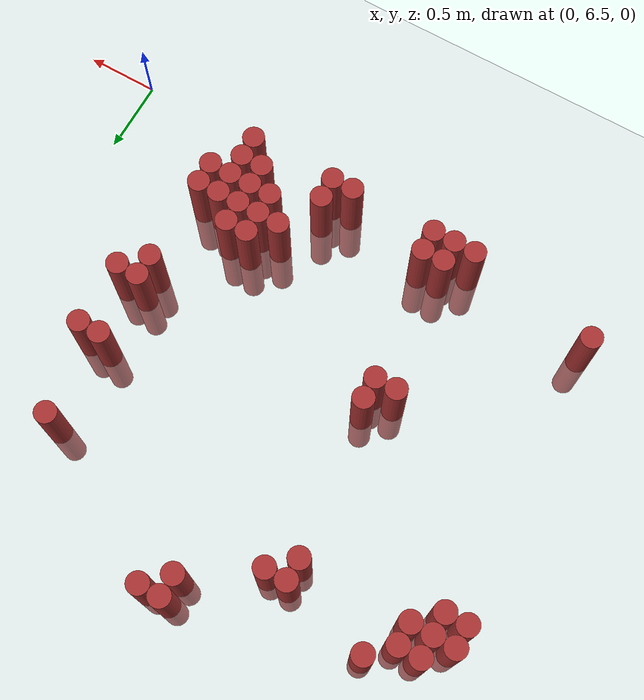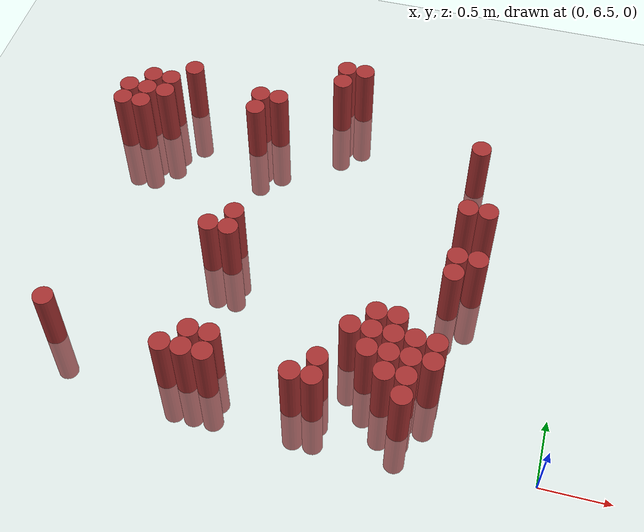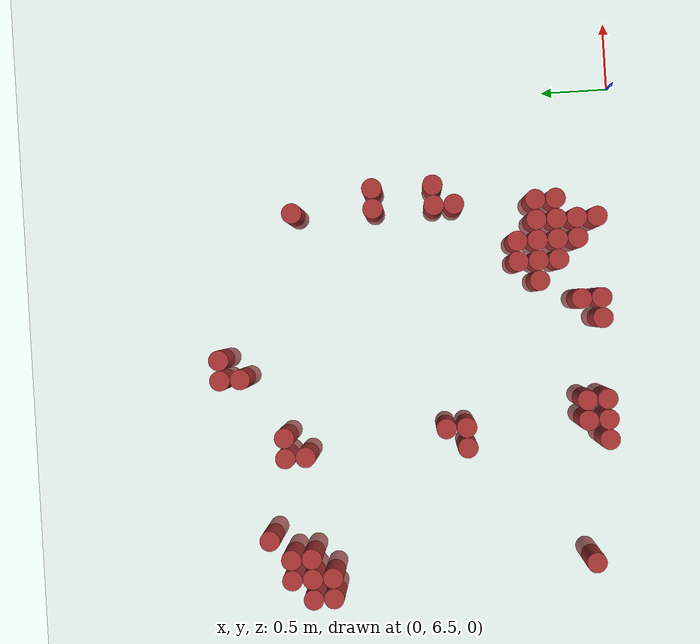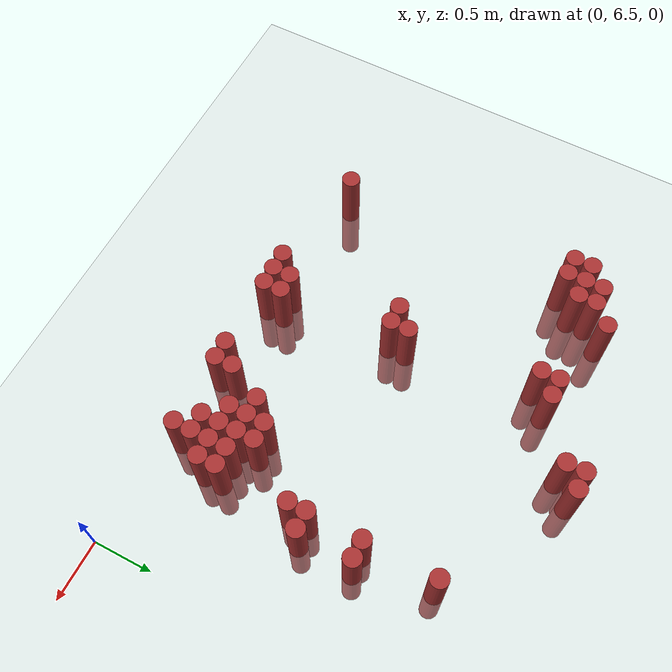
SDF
<sdf version="1.6">
 <world name="default">
  <model name="ground_plane">
   <static>1</static>
   <link name="link">
    <collision name="collision">
     <geometry><plane><normal>0 0 1</normal><size>100 100</size></plane></geometry>
     <surface><friction><ode><mu>100</mu><mu2>50</mu2></ode></friction></surface>
    </collision>
    <visual name="visual">
     <cast_shadows>0</cast_shadows>
     <geometry><plane><normal>0 0 1</normal><size>100 100</size></plane></geometry>
     <material>
      <script><uri>file://media/materials/scripts/gazebo.material</uri><name>Gazebo/Grey</name></script>
     </material>
    </visual>
   </link>
  </model>
  <model name="unit_cylinder_164">
   <static>1</static>
   <pose>-3.675000 8.775000 0.000000 0.000000 0.000000 0.000000</pose>
   <link name="link">
    <inertial>
     <mass>1</mass>
     <inertia><ixx>0.145833</ixx><ixy>0</ixy><ixz>0</ixz><iyy>0.145833</iyy><iyz>0</iyz><izz>0.125</izz></inertia>
    </inertial>
    <collision name="collision">
     <geometry><cylinder><radius>0.075000</radius><length>1</length></cylinder></geometry>
    </collision>
    <visual name="visual">
     <geometry><cylinder><radius>0.075000</radius><length>1</length></cylinder></geometry>
     <material>
      <ambient>0.648000 0.192000 0.192000 1</ambient>
      <diffuse>0.648000 0.192000 0.192000 1</diffuse>
     </material>
     <material>
      <script><name>Gazebo/Grey</name><uri>file://media/materials/scripts/gazebo.material</uri></script>
     </material>
    </visual>
   </link>
  </model>
  <model name="unit_cylinder_165">
   <static>1</static>
   <pose>-3.675000 8.925000 0.000000 0.000000 0.000000 0.000000</pose>
   <link name="link">
    <inertial>
     <mass>1</mass>
     <inertia><ixx>0.145833</ixx><ixy>0</ixy><ixz>0</ixz><iyy>0.145833</iyy><iyz>0</iyz><izz>0.125</izz></inertia>
    </inertial>
    <collision name="collision">
     <geometry><cylinder><radius>0.075000</radius><length>1</length></cylinder></geometry>
    </collision>
    <visual name="visual">
     <geometry><cylinder><radius>0.075000</radius><length>1</length></cylinder></geometry>
     <material>
      <ambient>0.648000 0.192000 0.192000 1</ambient>
      <diffuse>0.648000 0.192000 0.192000 1</diffuse>
     </material>
     <material>
      <script><name>Gazebo/Grey</name><uri>file://media/materials/scripts/gazebo.material</uri></script>
     </material>
    </visual>
   </link>
  </model>
  <model name="unit_cylinder_166">
   <static>1</static>
   <pose>-3.525000 6.825000 0.000000 0.000000 0.000000 0.000000</pose>
   <link name="link">
    <inertial>
     <mass>1</mass>
     <inertia><ixx>0.145833</ixx><ixy>0</ixy><ixz>0</ixz><iyy>0.145833</iyy><iyz>0</iyz><izz>0.125</izz></inertia>
    </inertial>
    <collision name="collision">
     <geometry><cylinder><radius>0.075000</radius><length>1</length></cylinder></geometry>
    </collision>
    <visual name="visual">
     <geometry><cylinder><radius>0.075000</radius><length>1</length></cylinder></geometry>
     <material>
      <ambient>0.648000 0.192000 0.192000 1</ambient>
      <diffuse>0.648000 0.192000 0.192000 1</diffuse>
     </material>
     <material>
      <script><name>Gazebo/Grey</name><uri>file://media/materials/scripts/gazebo.material</uri></script>
     </material>
    </visual>
   </link>
  </model>
  <model name="unit_cylinder_167">
   <static>1</static>
   <pose>-3.525000 8.775000 0.000000 0.000000 0.000000 0.000000</pose>
   <link name="link">
    <inertial>
     <mass>1</mass>
     <inertia><ixx>0.145833</ixx><ixy>0</ixy><ixz>0</ixz><iyy>0.145833</iyy><iyz>0</iyz><izz>0.125</izz></inertia>
    </inertial>
    <collision name="collision">
     <geometry><cylinder><radius>0.075000</radius><length>1</length></cylinder></geometry>
    </collision>
    <visual name="visual">
     <geometry><cylinder><radius>0.075000</radius><length>1</length></cylinder></geometry>
     <material>
      <ambient>0.648000 0.192000 0.192000 1</ambient>
      <diffuse>0.648000 0.192000 0.192000 1</diffuse>
     </material>
     <material>
      <script><name>Gazebo/Grey</name><uri>file://media/materials/scripts/gazebo.material</uri></script>
     </material>
    </visual>
   </link>
  </model>
  <model name="unit_cylinder_168">
   <static>1</static>
   <pose>-3.525000 8.925000 0.000000 0.000000 0.000000 0.000000</pose>
   <link name="link">
    <inertial>
     <mass>1</mass>
     <inertia><ixx>0.145833</ixx><ixy>0</ixy><ixz>0</ixz><iyy>0.145833</iyy><iyz>0</iyz><izz>0.125</izz></inertia>
    </inertial>
    <collision name="collision">
     <geometry><cylinder><radius>0.075000</radius><length>1</length></cylinder></geometry>
    </collision>
    <visual name="visual">
     <geometry><cylinder><radius>0.075000</radius><length>1</length></cylinder></geometry>
     <material>
      <ambient>0.648000 0.192000 0.192000 1</ambient>
      <diffuse>0.648000 0.192000 0.192000 1</diffuse>
     </material>
     <material>
      <script><name>Gazebo/Grey</name><uri>file://media/materials/scripts/gazebo.material</uri></script>
     </material>
    </visual>
   </link>
  </model>
  <model name="unit_cylinder_169">
   <static>1</static>
   <pose>-3.525000 9.075000 0.000000 0.000000 0.000000 0.000000</pose>
   <link name="link">
    <inertial>
     <mass>1</mass>
     <inertia><ixx>0.145833</ixx><ixy>0</ixy><ixz>0</ixz><iyy>0.145833</iyy><iyz>0</iyz><izz>0.125</izz></inertia>
    </inertial>
    <collision name="collision">
     <geometry><cylinder><radius>0.075000</radius><length>1</length></cylinder></geometry>
    </collision>
    <visual name="visual">
     <geometry><cylinder><radius>0.075000</radius><length>1</length></cylinder></geometry>
     <material>
      <ambient>0.648000 0.192000 0.192000 1</ambient>
      <diffuse>0.648000 0.192000 0.192000 1</diffuse>
     </material>
     <material>
      <script><name>Gazebo/Grey</name><uri>file://media/materials/scripts/gazebo.material</uri></script>
     </material>
    </visual>
   </link>
  </model>
  <model name="unit_cylinder_170">
   <static>1</static>
   <pose>-3.375000 8.925000 0.000000 0.000000 0.000000 0.000000</pose>
   <link name="link">
    <inertial>
     <mass>1</mass>
     <inertia><ixx>0.145833</ixx><ixy>0</ixy><ixz>0</ixz><iyy>0.145833</iyy><iyz>0</iyz><izz>0.125</izz></inertia>
    </inertial>
    <collision name="collision">
     <geometry><cylinder><radius>0.075000</radius><length>1</length></cylinder></geometry>
    </collision>
    <visual name="visual">
     <geometry><cylinder><radius>0.075000</radius><length>1</length></cylinder></geometry>
     <material>
      <ambient>0.648000 0.192000 0.192000 1</ambient>
      <diffuse>0.648000 0.192000 0.192000 1</diffuse>
     </material>
     <material>
      <script><name>Gazebo/Grey</name><uri>file://media/materials/scripts/gazebo.material</uri></script>
     </material>
    </visual>
   </link>
  </model>
  <model name="unit_cylinder_171">
   <static>1</static>
   <pose>-3.375000 9.075000 0.000000 0.000000 0.000000 0.000000</pose>
   <link name="link">
    <inertial>
     <mass>1</mass>
     <inertia><ixx>0.145833</ixx><ixy>0</ixy><ixz>0</ixz><iyy>0.145833</iyy><iyz>0</iyz><izz>0.125</izz></inertia>
    </inertial>
    <collision name="collision">
     <geometry><cylinder><radius>0.075000</radius><length>1</length></cylinder></geometry>
    </collision>
    <visual name="visual">
     <geometry><cylinder><radius>0.075000</radius><length>1</length></cylinder></geometry>
     <material>
      <ambient>0.648000 0.192000 0.192000 1</ambient>
      <diffuse>0.648000 0.192000 0.192000 1</diffuse>
     </material>
     <material>
      <script><name>Gazebo/Grey</name><uri>file://media/materials/scripts/gazebo.material</uri></script>
     </material>
    </visual>
   </link>
  </model>
  <model name="unit_cylinder_172">
   <static>1</static>
   <pose>-3.225000 9.225000 0.000000 0.000000 0.000000 0.000000</pose>
   <link name="link">
    <inertial>
     <mass>1</mass>
     <inertia><ixx>0.145833</ixx><ixy>0</ixy><ixz>0</ixz><iyy>0.145833</iyy><iyz>0</iyz><izz>0.125</izz></inertia>
    </inertial>
    <collision name="collision">
     <geometry><cylinder><radius>0.075000</radius><length>1</length></cylinder></geometry>
    </collision>
    <visual name="visual">
     <geometry><cylinder><radius>0.075000</radius><length>1</length></cylinder></geometry>
     <material>
      <ambient>0.648000 0.192000 0.192000 1</ambient>
      <diffuse>0.648000 0.192000 0.192000 1</diffuse>
     </material>
     <material>
      <script><name>Gazebo/Grey</name><uri>file://media/materials/scripts/gazebo.material</uri></script>
     </material>
    </visual>
   </link>
  </model>
  <model name="unit_cylinder_173">
   <static>1</static>
   <pose>-2.625000 6.675000 0.000000 0.000000 0.000000 0.000000</pose>
   <link name="link">
    <inertial>
     <mass>1</mass>
     <inertia><ixx>0.145833</ixx><ixy>0</ixy><ixz>0</ixz><iyy>0.145833</iyy><iyz>0</iyz><izz>0.125</izz></inertia>
    </inertial>
    <collision name="collision">
     <geometry><cylinder><radius>0.075000</radius><length>1</length></cylinder></geometry>
    </collision>
    <visual name="visual">
     <geometry><cylinder><radius>0.075000</radius><length>1</length></cylinder></geometry>
     <material>
      <ambient>0.648000 0.192000 0.192000 1</ambient>
      <diffuse>0.648000 0.192000 0.192000 1</diffuse>
     </material>
     <material>
      <script><name>Gazebo/Grey</name><uri>file://media/materials/scripts/gazebo.material</uri></script>
     </material>
    </visual>
   </link>
  </model>
  <model name="unit_cylinder_174">
   <static>1</static>
   <pose>-2.625000 7.725000 0.000000 0.000000 0.000000 0.000000</pose>
   <link name="link">
    <inertial>
     <mass>1</mass>
     <inertia><ixx>0.145833</ixx><ixy>0</ixy><ixz>0</ixz><iyy>0.145833</iyy><iyz>0</iyz><izz>0.125</izz></inertia>
    </inertial>
    <collision name="collision">
     <geometry><cylinder><radius>0.075000</radius><length>1</length></cylinder></geometry>
    </collision>
    <visual name="visual">
     <geometry><cylinder><radius>0.075000</radius><length>1</length></cylinder></geometry>
     <material>
      <ambient>0.648000 0.192000 0.192000 1</ambient>
      <diffuse>0.648000 0.192000 0.192000 1</diffuse>
     </material>
     <material>
      <script><name>Gazebo/Grey</name><uri>file://media/materials/scripts/gazebo.material</uri></script>
     </material>
    </visual>
   </link>
  </model>
  <model name="unit_cylinder_175">
   <static>1</static>
   <pose>-2.625000 8.925000 0.000000 0.000000 0.000000 0.000000</pose>
   <link name="link">
    <inertial>
     <mass>1</mass>
     <inertia><ixx>0.145833</ixx><ixy>0</ixy><ixz>0</ixz><iyy>0.145833</iyy><iyz>0</iyz><izz>0.125</izz></inertia>
    </inertial>
    <collision name="collision">
     <geometry><cylinder><radius>0.075000</radius><length>1</length></cylinder></geometry>
    </collision>
    <visual name="visual">
     <geometry><cylinder><radius>0.075000</radius><length>1</length></cylinder></geometry>
     <material>
      <ambient>0.648000 0.192000 0.192000 1</ambient>
      <diffuse>0.648000 0.192000 0.192000 1</diffuse>
     </material>
     <material>
      <script><name>Gazebo/Grey</name><uri>file://media/materials/scripts/gazebo.material</uri></script>
     </material>
    </visual>
   </link>
  </model>
  <model name="unit_cylinder_176">
   <static>1</static>
   <pose>-2.625000 9.075000 0.000000 0.000000 0.000000 0.000000</pose>
   <link name="link">
    <inertial>
     <mass>1</mass>
     <inertia><ixx>0.145833</ixx><ixy>0</ixy><ixz>0</ixz><iyy>0.145833</iyy><iyz>0</iyz><izz>0.125</izz></inertia>
    </inertial>
    <collision name="collision">
     <geometry><cylinder><radius>0.075000</radius><length>1</length></cylinder></geometry>
    </collision>
    <visual name="visual">
     <geometry><cylinder><radius>0.075000</radius><length>1</length></cylinder></geometry>
     <material>
      <ambient>0.648000 0.192000 0.192000 1</ambient>
      <diffuse>0.648000 0.192000 0.192000 1</diffuse>
     </material>
     <material>
      <script><name>Gazebo/Grey</name><uri>file://media/materials/scripts/gazebo.material</uri></script>
     </material>
    </visual>
   </link>
  </model>
  <model name="unit_cylinder_177">
   <static>1</static>
   <pose>-2.475000 6.675000 0.000000 0.000000 0.000000 0.000000</pose>
   <link name="link">
    <inertial>
     <mass>1</mass>
     <inertia><ixx>0.145833</ixx><ixy>0</ixy><ixz>0</ixz><iyy>0.145833</iyy><iyz>0</iyz><izz>0.125</izz></inertia>
    </inertial>
    <collision name="collision">
     <geometry><cylinder><radius>0.075000</radius><length>1</length></cylinder></geometry>
    </collision>
    <visual name="visual">
     <geometry><cylinder><radius>0.075000</radius><length>1</length></cylinder></geometry>
     <material>
      <ambient>0.648000 0.192000 0.192000 1</ambient>
      <diffuse>0.648000 0.192000 0.192000 1</diffuse>
     </material>
     <material>
      <script><name>Gazebo/Grey</name><uri>file://media/materials/scripts/gazebo.material</uri></script>
     </material>
    </visual>
   </link>
  </model>
  <model name="unit_cylinder_178">
   <static>1</static>
   <pose>-2.475000 6.825000 0.000000 0.000000 0.000000 0.000000</pose>
   <link name="link">
    <inertial>
     <mass>1</mass>
     <inertia><ixx>0.145833</ixx><ixy>0</ixy><ixz>0</ixz><iyy>0.145833</iyy><iyz>0</iyz><izz>0.125</izz></inertia>
    </inertial>
    <collision name="collision">
     <geometry><cylinder><radius>0.075000</radius><length>1</length></cylinder></geometry>
    </collision>
    <visual name="visual">
     <geometry><cylinder><radius>0.075000</radius><length>1</length></cylinder></geometry>
     <material>
      <ambient>0.648000 0.192000 0.192000 1</ambient>
      <diffuse>0.648000 0.192000 0.192000 1</diffuse>
     </material>
     <material>
      <script><name>Gazebo/Grey</name><uri>file://media/materials/scripts/gazebo.material</uri></script>
     </material>
    </visual>
   </link>
  </model>
  <model name="unit_cylinder_179">
   <static>1</static>
   <pose>-2.475000 7.725000 0.000000 0.000000 0.000000 0.000000</pose>
   <link name="link">
    <inertial>
     <mass>1</mass>
     <inertia><ixx>0.145833</ixx><ixy>0</ixy><ixz>0</ixz><iyy>0.145833</iyy><iyz>0</iyz><izz>0.125</izz></inertia>
    </inertial>
    <collision name="collision">
     <geometry><cylinder><radius>0.075000</radius><length>1</length></cylinder></geometry>
    </collision>
    <visual name="visual">
     <geometry><cylinder><radius>0.075000</radius><length>1</length></cylinder></geometry>
     <material>
      <ambient>0.648000 0.192000 0.192000 1</ambient>
      <diffuse>0.648000 0.192000 0.192000 1</diffuse>
     </material>
     <material>
      <script><name>Gazebo/Grey</name><uri>file://media/materials/scripts/gazebo.material</uri></script>
     </material>
    </visual>
   </link>
  </model>
  <model name="unit_cylinder_180">
   <static>1</static>
   <pose>-2.475000 7.875000 0.000000 0.000000 0.000000 0.000000</pose>
   <link name="link">
    <inertial>
     <mass>1</mass>
     <inertia><ixx>0.145833</ixx><ixy>0</ixy><ixz>0</ixz><iyy>0.145833</iyy><iyz>0</iyz><izz>0.125</izz></inertia>
    </inertial>
    <collision name="collision">
     <geometry><cylinder><radius>0.075000</radius><length>1</length></cylinder></geometry>
    </collision>
    <visual name="visual">
     <geometry><cylinder><radius>0.075000</radius><length>1</length></cylinder></geometry>
     <material>
      <ambient>0.648000 0.192000 0.192000 1</ambient>
      <diffuse>0.648000 0.192000 0.192000 1</diffuse>
     </material>
     <material>
      <script><name>Gazebo/Grey</name><uri>file://media/materials/scripts/gazebo.material</uri></script>
     </material>
    </visual>
   </link>
  </model>
  <model name="unit_cylinder_181">
   <static>1</static>
   <pose>-2.475000 9.075000 0.000000 0.000000 0.000000 0.000000</pose>
   <link name="link">
    <inertial>
     <mass>1</mass>
     <inertia><ixx>0.145833</ixx><ixy>0</ixy><ixz>0</ixz><iyy>0.145833</iyy><iyz>0</iyz><izz>0.125</izz></inertia>
    </inertial>
    <collision name="collision">
     <geometry><cylinder><radius>0.075000</radius><length>1</length></cylinder></geometry>
    </collision>
    <visual name="visual">
     <geometry><cylinder><radius>0.075000</radius><length>1</length></cylinder></geometry>
     <material>
      <ambient>0.648000 0.192000 0.192000 1</ambient>
      <diffuse>0.648000 0.192000 0.192000 1</diffuse>
     </material>
     <material>
      <script><name>Gazebo/Grey</name><uri>file://media/materials/scripts/gazebo.material</uri></script>
     </material>
    </visual>
   </link>
  </model>
  <model name="unit_cylinder_182">
   <static>1</static>
   <pose>-2.325000 6.675000 0.000000 0.000000 0.000000 0.000000</pose>
   <link name="link">
    <inertial>
     <mass>1</mass>
     <inertia><ixx>0.145833</ixx><ixy>0</ixy><ixz>0</ixz><iyy>0.145833</iyy><iyz>0</iyz><izz>0.125</izz></inertia>
    </inertial>
    <collision name="collision">
     <geometry><cylinder><radius>0.075000</radius><length>1</length></cylinder></geometry>
    </collision>
    <visual name="visual">
     <geometry><cylinder><radius>0.075000</radius><length>1</length></cylinder></geometry>
     <material>
      <ambient>0.648000 0.192000 0.192000 1</ambient>
      <diffuse>0.648000 0.192000 0.192000 1</diffuse>
     </material>
     <material>
      <script><name>Gazebo/Grey</name><uri>file://media/materials/scripts/gazebo.material</uri></script>
     </material>
    </visual>
   </link>
  </model>
  <model name="unit_cylinder_183">
   <static>1</static>
   <pose>-2.325000 6.825000 0.000000 0.000000 0.000000 0.000000</pose>
   <link name="link">
    <inertial>
     <mass>1</mass>
     <inertia><ixx>0.145833</ixx><ixy>0</ixy><ixz>0</ixz><iyy>0.145833</iyy><iyz>0</iyz><izz>0.125</izz></inertia>
    </inertial>
    <collision name="collision">
     <geometry><cylinder><radius>0.075000</radius><length>1</length></cylinder></geometry>
    </collision>
    <visual name="visual">
     <geometry><cylinder><radius>0.075000</radius><length>1</length></cylinder></geometry>
     <material>
      <ambient>0.648000 0.192000 0.192000 1</ambient>
      <diffuse>0.648000 0.192000 0.192000 1</diffuse>
     </material>
     <material>
      <script><name>Gazebo/Grey</name><uri>file://media/materials/scripts/gazebo.material</uri></script>
     </material>
    </visual>
   </link>
  </model>
  <model name="unit_cylinder_184">
   <static>1</static>
   <pose>-2.025000 9.375000 0.000000 0.000000 0.000000 0.000000</pose>
   <link name="link">
    <inertial>
     <mass>1</mass>
     <inertia><ixx>0.145833</ixx><ixy>0</ixy><ixz>0</ixz><iyy>0.145833</iyy><iyz>0</iyz><izz>0.125</izz></inertia>
    </inertial>
    <collision name="collision">
     <geometry><cylinder><radius>0.075000</radius><length>1</length></cylinder></geometry>
    </collision>
    <visual name="visual">
     <geometry><cylinder><radius>0.075000</radius><length>1</length></cylinder></geometry>
     <material>
      <ambient>0.648000 0.192000 0.192000 1</ambient>
      <diffuse>0.648000 0.192000 0.192000 1</diffuse>
     </material>
     <material>
      <script><name>Gazebo/Grey</name><uri>file://media/materials/scripts/gazebo.material</uri></script>
     </material>
    </visual>
   </link>
  </model>
  <model name="unit_cylinder_185">
   <static>1</static>
   <pose>-2.025000 9.525000 0.000000 0.000000 0.000000 0.000000</pose>
   <link name="link">
    <inertial>
     <mass>1</mass>
     <inertia><ixx>0.145833</ixx><ixy>0</ixy><ixz>0</ixz><iyy>0.145833</iyy><iyz>0</iyz><izz>0.125</izz></inertia>
    </inertial>
    <collision name="collision">
     <geometry><cylinder><radius>0.075000</radius><length>1</length></cylinder></geometry>
    </collision>
    <visual name="visual">
     <geometry><cylinder><radius>0.075000</radius><length>1</length></cylinder></geometry>
     <material>
      <ambient>0.648000 0.192000 0.192000 1</ambient>
      <diffuse>0.648000 0.192000 0.192000 1</diffuse>
     </material>
     <material>
      <script><name>Gazebo/Grey</name><uri>file://media/materials/scripts/gazebo.material</uri></script>
     </material>
    </visual>
   </link>
  </model>
  <model name="unit_cylinder_186">
   <static>1</static>
   <pose>-1.875000 9.525000 0.000000 0.000000 0.000000 0.000000</pose>
   <link name="link">
    <inertial>
     <mass>1</mass>
     <inertia><ixx>0.145833</ixx><ixy>0</ixy><ixz>0</ixz><iyy>0.145833</iyy><iyz>0</iyz><izz>0.125</izz></inertia>
    </inertial>
    <collision name="collision">
     <geometry><cylinder><radius>0.075000</radius><length>1</length></cylinder></geometry>
    </collision>
    <visual name="visual">
     <geometry><cylinder><radius>0.075000</radius><length>1</length></cylinder></geometry>
     <material>
      <ambient>0.648000 0.192000 0.192000 1</ambient>
      <diffuse>0.648000 0.192000 0.192000 1</diffuse>
     </material>
     <material>
      <script><name>Gazebo/Grey</name><uri>file://media/materials/scripts/gazebo.material</uri></script>
     </material>
    </visual>
   </link>
  </model>
  <model name="unit_cylinder_189">
   <static>1</static>
   <pose>-1.725000 6.675000 0.000000 0.000000 0.000000 0.000000</pose>
   <link name="link">
    <inertial>
     <mass>1</mass>
     <inertia><ixx>0.145833</ixx><ixy>0</ixy><ixz>0</ixz><iyy>0.145833</iyy><iyz>0</iyz><izz>0.125</izz></inertia>
    </inertial>
    <collision name="collision">
     <geometry><cylinder><radius>0.075000</radius><length>1</length></cylinder></geometry>
    </collision>
    <visual name="visual">
     <geometry><cylinder><radius>0.075000</radius><length>1</length></cylinder></geometry>
     <material>
      <ambient>0.648000 0.192000 0.192000 1</ambient>
      <diffuse>0.648000 0.192000 0.192000 1</diffuse>
     </material>
     <material>
      <script><name>Gazebo/Grey</name><uri>file://media/materials/scripts/gazebo.material</uri></script>
     </material>
    </visual>
   </link>
  </model>
  <model name="unit_cylinder_195">
   <static>1</static>
   <pose>-1.575000 6.675000 0.000000 0.000000 0.000000 0.000000</pose>
   <link name="link">
    <inertial>
     <mass>1</mass>
     <inertia><ixx>0.145833</ixx><ixy>0</ixy><ixz>0</ixz><iyy>0.145833</iyy><iyz>0</iyz><izz>0.125</izz></inertia>
    </inertial>
    <collision name="collision">
     <geometry><cylinder><radius>0.075000</radius><length>1</length></cylinder></geometry>
    </collision>
    <visual name="visual">
     <geometry><cylinder><radius>0.075000</radius><length>1</length></cylinder></geometry>
     <material>
      <ambient>0.648000 0.192000 0.192000 1</ambient>
      <diffuse>0.648000 0.192000 0.192000 1</diffuse>
     </material>
     <material>
      <script><name>Gazebo/Grey</name><uri>file://media/materials/scripts/gazebo.material</uri></script>
     </material>
    </visual>
   </link>
  </model>
  <model name="unit_cylinder_196">
   <static>1</static>
   <pose>-1.575000 6.825000 0.000000 0.000000 0.000000 0.000000</pose>
   <link name="link">
    <inertial>
     <mass>1</mass>
     <inertia><ixx>0.145833</ixx><ixy>0</ixy><ixz>0</ixz><iyy>0.145833</iyy><iyz>0</iyz><izz>0.125</izz></inertia>
    </inertial>
    <collision name="collision">
     <geometry><cylinder><radius>0.075000</radius><length>1</length></cylinder></geometry>
    </collision>
    <visual name="visual">
     <geometry><cylinder><radius>0.075000</radius><length>1</length></cylinder></geometry>
     <material>
      <ambient>0.648000 0.192000 0.192000 1</ambient>
      <diffuse>0.648000 0.192000 0.192000 1</diffuse>
     </material>
     <material>
      <script><name>Gazebo/Grey</name><uri>file://media/materials/scripts/gazebo.material</uri></script>
     </material>
    </visual>
   </link>
  </model>
  <model name="unit_cylinder_199">
   <static>1</static>
   <pose>-1.425000 7.125000 0.000000 0.000000 0.000000 0.000000</pose>
   <link name="link">
    <inertial>
     <mass>1</mass>
     <inertia><ixx>0.145833</ixx><ixy>0</ixy><ixz>0</ixz><iyy>0.145833</iyy><iyz>0</iyz><izz>0.125</izz></inertia>
    </inertial>
    <collision name="collision">
     <geometry><cylinder><radius>0.075000</radius><length>1</length></cylinder></geometry>
    </collision>
    <visual name="visual">
     <geometry><cylinder><radius>0.075000</radius><length>1</length></cylinder></geometry>
     <material>
      <ambient>0.648000 0.192000 0.192000 1</ambient>
      <diffuse>0.648000 0.192000 0.192000 1</diffuse>
     </material>
     <material>
      <script><name>Gazebo/Grey</name><uri>file://media/materials/scripts/gazebo.material</uri></script>
     </material>
    </visual>
   </link>
  </model>
  <model name="unit_cylinder_200">
   <static>1</static>
   <pose>-1.275000 6.975000 0.000000 0.000000 0.000000 0.000000</pose>
   <link name="link">
    <inertial>
     <mass>1</mass>
     <inertia><ixx>0.145833</ixx><ixy>0</ixy><ixz>0</ixz><iyy>0.145833</iyy><iyz>0</iyz><izz>0.125</izz></inertia>
    </inertial>
    <collision name="collision">
     <geometry><cylinder><radius>0.075000</radius><length>1</length></cylinder></geometry>
    </collision>
    <visual name="visual">
     <geometry><cylinder><radius>0.075000</radius><length>1</length></cylinder></geometry>
     <material>
      <ambient>0.648000 0.192000 0.192000 1</ambient>
      <diffuse>0.648000 0.192000 0.192000 1</diffuse>
     </material>
     <material>
      <script><name>Gazebo/Grey</name><uri>file://media/materials/scripts/gazebo.material</uri></script>
     </material>
    </visual>
   </link>
  </model>
  <model name="unit_cylinder_201">
   <static>1</static>
   <pose>-1.275000 7.125000 0.000000 0.000000 0.000000 0.000000</pose>
   <link name="link">
    <inertial>
     <mass>1</mass>
     <inertia><ixx>0.145833</ixx><ixy>0</ixy><ixz>0</ixz><iyy>0.145833</iyy><iyz>0</iyz><izz>0.125</izz></inertia>
    </inertial>
    <collision name="collision">
     <geometry><cylinder><radius>0.075000</radius><length>1</length></cylinder></geometry>
    </collision>
    <visual name="visual">
     <geometry><cylinder><radius>0.075000</radius><length>1</length></cylinder></geometry>
     <material>
      <ambient>0.648000 0.192000 0.192000 1</ambient>
      <diffuse>0.648000 0.192000 0.192000 1</diffuse>
     </material>
     <material>
      <script><name>Gazebo/Grey</name><uri>file://media/materials/scripts/gazebo.material</uri></script>
     </material>
    </visual>
   </link>
  </model>
  <model name="unit_cylinder_202">
   <static>1</static>
   <pose>-1.275000 7.275000 0.000000 0.000000 0.000000 0.000000</pose>
   <link name="link">
    <inertial>
     <mass>1</mass>
     <inertia><ixx>0.145833</ixx><ixy>0</ixy><ixz>0</ixz><iyy>0.145833</iyy><iyz>0</iyz><izz>0.125</izz></inertia>
    </inertial>
    <collision name="collision">
     <geometry><cylinder><radius>0.075000</radius><length>1</length></cylinder></geometry>
    </collision>
    <visual name="visual">
     <geometry><cylinder><radius>0.075000</radius><length>1</length></cylinder></geometry>
     <material>
      <ambient>0.648000 0.192000 0.192000 1</ambient>
      <diffuse>0.648000 0.192000 0.192000 1</diffuse>
     </material>
     <material>
      <script><name>Gazebo/Grey</name><uri>file://media/materials/scripts/gazebo.material</uri></script>
     </material>
    </visual>
   </link>
  </model>
  <model name="unit_cylinder_203">
   <static>1</static>
   <pose>-1.125000 6.825000 0.000000 0.000000 0.000000 0.000000</pose>
   <link name="link">
    <inertial>
     <mass>1</mass>
     <inertia><ixx>0.145833</ixx><ixy>0</ixy><ixz>0</ixz><iyy>0.145833</iyy><iyz>0</iyz><izz>0.125</izz></inertia>
    </inertial>
    <collision name="collision">
     <geometry><cylinder><radius>0.075000</radius><length>1</length></cylinder></geometry>
    </collision>
    <visual name="visual">
     <geometry><cylinder><radius>0.075000</radius><length>1</length></cylinder></geometry>
     <material>
      <ambient>0.648000 0.192000 0.192000 1</ambient>
      <diffuse>0.648000 0.192000 0.192000 1</diffuse>
     </material>
     <material>
      <script><name>Gazebo/Grey</name><uri>file://media/materials/scripts/gazebo.material</uri></script>
     </material>
    </visual>
   </link>
  </model>
  <model name="unit_cylinder_204">
   <static>1</static>
   <pose>-1.125000 6.975000 0.000000 0.000000 0.000000 0.000000</pose>
   <link name="link">
    <inertial>
     <mass>1</mass>
     <inertia><ixx>0.145833</ixx><ixy>0</ixy><ixz>0</ixz><iyy>0.145833</iyy><iyz>0</iyz><izz>0.125</izz></inertia>
    </inertial>
    <collision name="collision">
     <geometry><cylinder><radius>0.075000</radius><length>1</length></cylinder></geometry>
    </collision>
    <visual name="visual">
     <geometry><cylinder><radius>0.075000</radius><length>1</length></cylinder></geometry>
     <material>
      <ambient>0.648000 0.192000 0.192000 1</ambient>
      <diffuse>0.648000 0.192000 0.192000 1</diffuse>
     </material>
     <material>
      <script><name>Gazebo/Grey</name><uri>file://media/materials/scripts/gazebo.material</uri></script>
     </material>
    </visual>
   </link>
  </model>
  <model name="unit_cylinder_205">
   <static>1</static>
   <pose>-1.125000 7.125000 0.000000 0.000000 0.000000 0.000000</pose>
   <link name="link">
    <inertial>
     <mass>1</mass>
     <inertia><ixx>0.145833</ixx><ixy>0</ixy><ixz>0</ixz><iyy>0.145833</iyy><iyz>0</iyz><izz>0.125</izz></inertia>
    </inertial>
    <collision name="collision">
     <geometry><cylinder><radius>0.075000</radius><length>1</length></cylinder></geometry>
    </collision>
    <visual name="visual">
     <geometry><cylinder><radius>0.075000</radius><length>1</length></cylinder></geometry>
     <material>
      <ambient>0.648000 0.192000 0.192000 1</ambient>
      <diffuse>0.648000 0.192000 0.192000 1</diffuse>
     </material>
     <material>
      <script><name>Gazebo/Grey</name><uri>file://media/materials/scripts/gazebo.material</uri></script>
     </material>
    </visual>
   </link>
  </model>
  <model name="unit_cylinder_206">
   <static>1</static>
   <pose>-1.125000 7.275000 0.000000 0.000000 0.000000 0.000000</pose>
   <link name="link">
    <inertial>
     <mass>1</mass>
     <inertia><ixx>0.145833</ixx><ixy>0</ixy><ixz>0</ixz><iyy>0.145833</iyy><iyz>0</iyz><izz>0.125</izz></inertia>
    </inertial>
    <collision name="collision">
     <geometry><cylinder><radius>0.075000</radius><length>1</length></cylinder></geometry>
    </collision>
    <visual name="visual">
     <geometry><cylinder><radius>0.075000</radius><length>1</length></cylinder></geometry>
     <material>
      <ambient>0.648000 0.192000 0.192000 1</ambient>
      <diffuse>0.648000 0.192000 0.192000 1</diffuse>
     </material>
     <material>
      <script><name>Gazebo/Grey</name><uri>file://media/materials/scripts/gazebo.material</uri></script>
     </material>
    </visual>
   </link>
  </model>
  <model name="unit_cylinder_207">
   <static>1</static>
   <pose>-0.975000 6.675000 0.000000 0.000000 0.000000 0.000000</pose>
   <link name="link">
    <inertial>
     <mass>1</mass>
     <inertia><ixx>0.145833</ixx><ixy>0</ixy><ixz>0</ixz><iyy>0.145833</iyy><iyz>0</iyz><izz>0.125</izz></inertia>
    </inertial>
    <collision name="collision">
     <geometry><cylinder><radius>0.075000</radius><length>1</length></cylinder></geometry>
    </collision>
    <visual name="visual">
     <geometry><cylinder><radius>0.075000</radius><length>1</length></cylinder></geometry>
     <material>
      <ambient>0.648000 0.192000 0.192000 1</ambient>
      <diffuse>0.648000 0.192000 0.192000 1</diffuse>
     </material>
     <material>
      <script><name>Gazebo/Grey</name><uri>file://media/materials/scripts/gazebo.material</uri></script>
     </material>
    </visual>
   </link>
  </model>
  <model name="unit_cylinder_208">
   <static>1</static>
   <pose>-0.975000 6.825000 0.000000 0.000000 0.000000 0.000000</pose>
   <link name="link">
    <inertial>
     <mass>1</mass>
     <inertia><ixx>0.145833</ixx><ixy>0</ixy><ixz>0</ixz><iyy>0.145833</iyy><iyz>0</iyz><izz>0.125</izz></inertia>
    </inertial>
    <collision name="collision">
     <geometry><cylinder><radius>0.075000</radius><length>1</length></cylinder></geometry>
    </collision>
    <visual name="visual">
     <geometry><cylinder><radius>0.075000</radius><length>1</length></cylinder></geometry>
     <material>
      <ambient>0.648000 0.192000 0.192000 1</ambient>
      <diffuse>0.648000 0.192000 0.192000 1</diffuse>
     </material>
     <material>
      <script><name>Gazebo/Grey</name><uri>file://media/materials/scripts/gazebo.material</uri></script>
     </material>
    </visual>
   </link>
  </model>
  <model name="unit_cylinder_209">
   <static>1</static>
   <pose>-0.975000 6.975000 0.000000 0.000000 0.000000 0.000000</pose>
   <link name="link">
    <inertial>
     <mass>1</mass>
     <inertia><ixx>0.145833</ixx><ixy>0</ixy><ixz>0</ixz><iyy>0.145833</iyy><iyz>0</iyz><izz>0.125</izz></inertia>
    </inertial>
    <collision name="collision">
     <geometry><cylinder><radius>0.075000</radius><length>1</length></cylinder></geometry>
    </collision>
    <visual name="visual">
     <geometry><cylinder><radius>0.075000</radius><length>1</length></cylinder></geometry>
     <material>
      <ambient>0.648000 0.192000 0.192000 1</ambient>
      <diffuse>0.648000 0.192000 0.192000 1</diffuse>
     </material>
     <material>
      <script><name>Gazebo/Grey</name><uri>file://media/materials/scripts/gazebo.material</uri></script>
     </material>
    </visual>
   </link>
  </model>
  <model name="unit_cylinder_210">
   <static>1</static>
   <pose>-0.975000 7.125000 0.000000 0.000000 0.000000 0.000000</pose>
   <link name="link">
    <inertial>
     <mass>1</mass>
     <inertia><ixx>0.145833</ixx><ixy>0</ixy><ixz>0</ixz><iyy>0.145833</iyy><iyz>0</iyz><izz>0.125</izz></inertia>
    </inertial>
    <collision name="collision">
     <geometry><cylinder><radius>0.075000</radius><length>1</length></cylinder></geometry>
    </collision>
    <visual name="visual">
     <geometry><cylinder><radius>0.075000</radius><length>1</length></cylinder></geometry>
     <material>
      <ambient>0.648000 0.192000 0.192000 1</ambient>
      <diffuse>0.648000 0.192000 0.192000 1</diffuse>
     </material>
     <material>
      <script><name>Gazebo/Grey</name><uri>file://media/materials/scripts/gazebo.material</uri></script>
     </material>
    </visual>
   </link>
  </model>
  <model name="unit_cylinder_211">
   <static>1</static>
   <pose>-0.825000 6.975000 0.000000 0.000000 0.000000 0.000000</pose>
   <link name="link">
    <inertial>
     <mass>1</mass>
     <inertia><ixx>0.145833</ixx><ixy>0</ixy><ixz>0</ixz><iyy>0.145833</iyy><iyz>0</iyz><izz>0.125</izz></inertia>
    </inertial>
    <collision name="collision">
     <geometry><cylinder><radius>0.075000</radius><length>1</length></cylinder></geometry>
    </collision>
    <visual name="visual">
     <geometry><cylinder><radius>0.075000</radius><length>1</length></cylinder></geometry>
     <material>
      <ambient>0.648000 0.192000 0.192000 1</ambient>
      <diffuse>0.648000 0.192000 0.192000 1</diffuse>
     </material>
     <material>
      <script><name>Gazebo/Grey</name><uri>file://media/materials/scripts/gazebo.material</uri></script>
     </material>
    </visual>
   </link>
  </model>
  <model name="unit_cylinder_212">
   <static>1</static>
   <pose>-0.825000 7.125000 0.000000 0.000000 0.000000 0.000000</pose>
   <link name="link">
    <inertial>
     <mass>1</mass>
     <inertia><ixx>0.145833</ixx><ixy>0</ixy><ixz>0</ixz><iyy>0.145833</iyy><iyz>0</iyz><izz>0.125</izz></inertia>
    </inertial>
    <collision name="collision">
     <geometry><cylinder><radius>0.075000</radius><length>1</length></cylinder></geometry>
    </collision>
    <visual name="visual">
     <geometry><cylinder><radius>0.075000</radius><length>1</length></cylinder></geometry>
     <material>
      <ambient>0.648000 0.192000 0.192000 1</ambient>
      <diffuse>0.648000 0.192000 0.192000 1</diffuse>
     </material>
     <material>
      <script><name>Gazebo/Grey</name><uri>file://media/materials/scripts/gazebo.material</uri></script>
     </material>
    </visual>
   </link>
  </model>
  <model name="unit_cylinder_213">
   <static>1</static>
   <pose>-0.825000 7.725000 0.000000 0.000000 0.000000 0.000000</pose>
   <link name="link">
    <inertial>
     <mass>1</mass>
     <inertia><ixx>0.145833</ixx><ixy>0</ixy><ixz>0</ixz><iyy>0.145833</iyy><iyz>0</iyz><izz>0.125</izz></inertia>
    </inertial>
    <collision name="collision">
     <geometry><cylinder><radius>0.075000</radius><length>1</length></cylinder></geometry>
    </collision>
    <visual name="visual">
     <geometry><cylinder><radius>0.075000</radius><length>1</length></cylinder></geometry>
     <material>
      <ambient>0.648000 0.192000 0.192000 1</ambient>
      <diffuse>0.648000 0.192000 0.192000 1</diffuse>
     </material>
     <material>
      <script><name>Gazebo/Grey</name><uri>file://media/materials/scripts/gazebo.material</uri></script>
     </material>
    </visual>
   </link>
  </model>
  <model name="unit_cylinder_214">
   <static>1</static>
   <pose>-0.825000 7.875000 0.000000 0.000000 0.000000 0.000000</pose>
   <link name="link">
    <inertial>
     <mass>1</mass>
     <inertia><ixx>0.145833</ixx><ixy>0</ixy><ixz>0</ixz><iyy>0.145833</iyy><iyz>0</iyz><izz>0.125</izz></inertia>
    </inertial>
    <collision name="collision">
     <geometry><cylinder><radius>0.075000</radius><length>1</length></cylinder></geometry>
    </collision>
    <visual name="visual">
     <geometry><cylinder><radius>0.075000</radius><length>1</length></cylinder></geometry>
     <material>
      <ambient>0.648000 0.192000 0.192000 1</ambient>
      <diffuse>0.648000 0.192000 0.192000 1</diffuse>
     </material>
     <material>
      <script><name>Gazebo/Grey</name><uri>file://media/materials/scripts/gazebo.material</uri></script>
     </material>
    </visual>
   </link>
  </model>
  <model name="unit_cylinder_215">
   <static>1</static>
   <pose>-0.825000 8.325000 0.000000 0.000000 0.000000 0.000000</pose>
   <link name="link">
    <inertial>
     <mass>1</mass>
     <inertia><ixx>0.145833</ixx><ixy>0</ixy><ixz>0</ixz><iyy>0.145833</iyy><iyz>0</iyz><izz>0.125</izz></inertia>
    </inertial>
    <collision name="collision">
     <geometry><cylinder><radius>0.075000</radius><length>1</length></cylinder></geometry>
    </collision>
    <visual name="visual">
     <geometry><cylinder><radius>0.075000</radius><length>1</length></cylinder></geometry>
     <material>
      <ambient>0.648000 0.192000 0.192000 1</ambient>
      <diffuse>0.648000 0.192000 0.192000 1</diffuse>
     </material>
     <material>
      <script><name>Gazebo/Grey</name><uri>file://media/materials/scripts/gazebo.material</uri></script>
     </material>
    </visual>
   </link>
  </model>
  <model name="unit_cylinder_216">
   <static>1</static>
   <pose>-0.825000 8.925000 0.000000 0.000000 0.000000 0.000000</pose>
   <link name="link">
    <inertial>
     <mass>1</mass>
     <inertia><ixx>0.145833</ixx><ixy>0</ixy><ixz>0</ixz><iyy>0.145833</iyy><iyz>0</iyz><izz>0.125</izz></inertia>
    </inertial>
    <collision name="collision">
     <geometry><cylinder><radius>0.075000</radius><length>1</length></cylinder></geometry>
    </collision>
    <visual name="visual">
     <geometry><cylinder><radius>0.075000</radius><length>1</length></cylinder></geometry>
     <material>
      <ambient>0.648000 0.192000 0.192000 1</ambient>
      <diffuse>0.648000 0.192000 0.192000 1</diffuse>
     </material>
     <material>
      <script><name>Gazebo/Grey</name><uri>file://media/materials/scripts/gazebo.material</uri></script>
     </material>
    </visual>
   </link>
  </model>
  <model name="unit_cylinder_218">
   <static>1</static>
   <pose>-0.675000 7.875000 0.000000 0.000000 0.000000 0.000000</pose>
   <link name="link">
    <inertial>
     <mass>1</mass>
     <inertia><ixx>0.145833</ixx><ixy>0</ixy><ixz>0</ixz><iyy>0.145833</iyy><iyz>0</iyz><izz>0.125</izz></inertia>
    </inertial>
    <collision name="collision">
     <geometry><cylinder><radius>0.075000</radius><length>1</length></cylinder></geometry>
    </collision>
    <visual name="visual">
     <geometry><cylinder><radius>0.075000</radius><length>1</length></cylinder></geometry>
     <material>
      <ambient>0.648000 0.192000 0.192000 1</ambient>
      <diffuse>0.648000 0.192000 0.192000 1</diffuse>
     </material>
     <material>
      <script><name>Gazebo/Grey</name><uri>file://media/materials/scripts/gazebo.material</uri></script>
     </material>
    </visual>
   </link>
  </model>
  <model name="unit_cylinder_219">
   <static>1</static>
   <pose>-0.675000 8.325000 0.000000 0.000000 0.000000 0.000000</pose>
   <link name="link">
    <inertial>
     <mass>1</mass>
     <inertia><ixx>0.145833</ixx><ixy>0</ixy><ixz>0</ixz><iyy>0.145833</iyy><iyz>0</iyz><izz>0.125</izz></inertia>
    </inertial>
    <collision name="collision">
     <geometry><cylinder><radius>0.075000</radius><length>1</length></cylinder></geometry>
    </collision>
    <visual name="visual">
     <geometry><cylinder><radius>0.075000</radius><length>1</length></cylinder></geometry>
     <material>
      <ambient>0.648000 0.192000 0.192000 1</ambient>
      <diffuse>0.648000 0.192000 0.192000 1</diffuse>
     </material>
     <material>
      <script><name>Gazebo/Grey</name><uri>file://media/materials/scripts/gazebo.material</uri></script>
     </material>
    </visual>
   </link>
  </model>
 </world>
</sdf>
